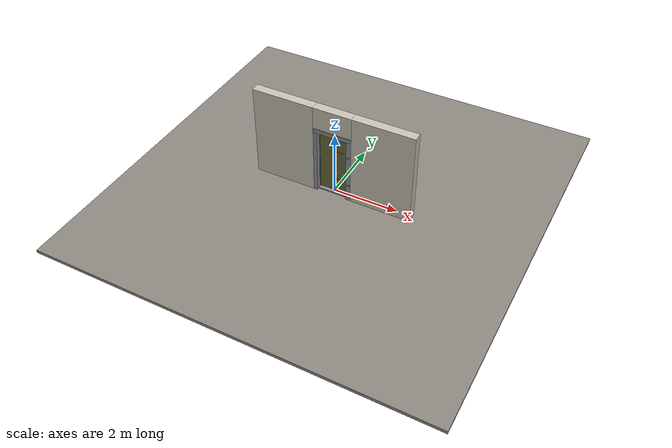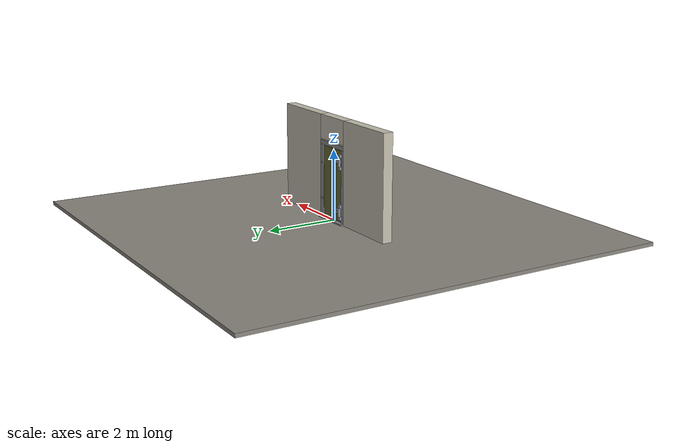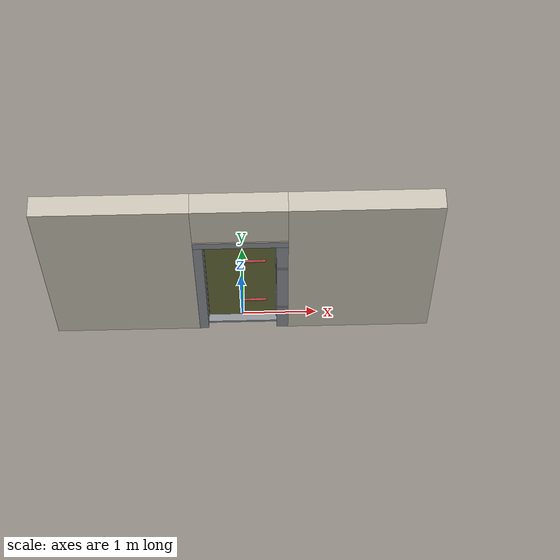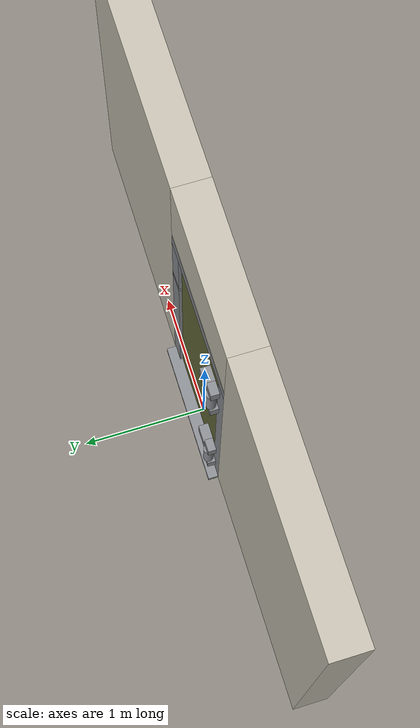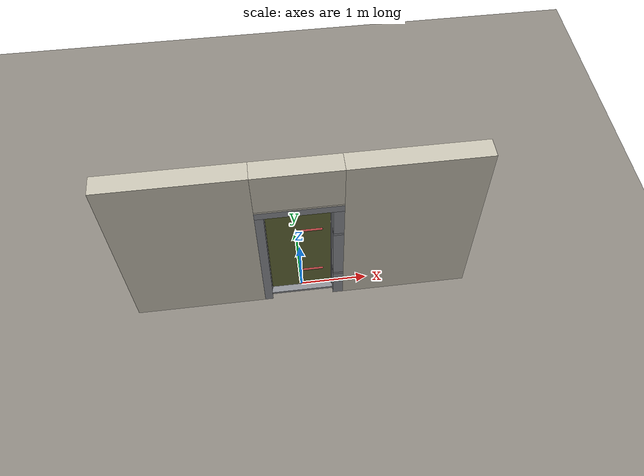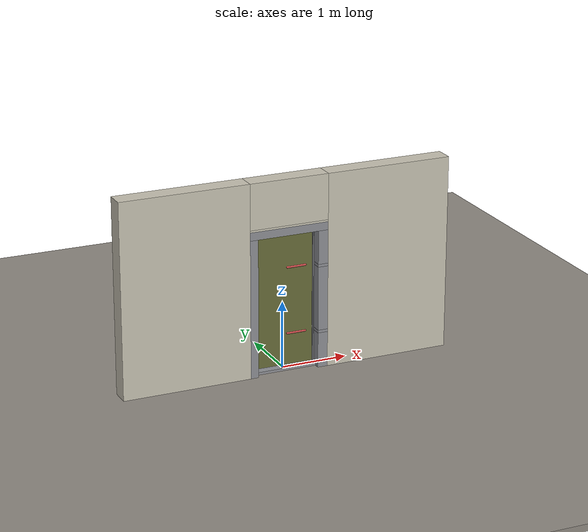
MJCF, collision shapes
<?xml version="1.0" ?>
<mujoco model="db0288_blast_simple">
  <compiler angle="radian" meshdir="../../hardware" texturedir="../../textures" autolimits="true" inertiafromgeom="false"/>
  <option timestep="0.002" integrator="implicitfast" cone="elliptic" impratio="10" noslip_iterations="3">
    <flag multiccd="enable"/>
  </option>
  <size memory="16M"/>
  <default>
    <geom condim="4" solref="0.005 1" solimp="0.95 0.99 0.001"/>
    <joint solreflimit="0.005 1" solimplimit="0.95 0.99 0.001"/>
    <tendon solreflimit="0.005 1"/>
    <equality solref="0.002 1"/>
  </default>
  <visual>
    <headlight ambient="0.4 0.4 0.4" diffuse="0.7 0.7 0.7" specular="0.2 0.2 0.2"/>
    <quality shadowsize="4096"/>
    <map znear="0.01" zfar="60"/>
  </visual>
  <asset>
    <mesh name="lever_c7a1f2892f" file="lever_c7a1f2892f.obj"/>
    <material name="mat_floor" rgba="0.55 0.53 0.5 1" specular="0.2" shininess="0.15" reflectance="0"/>
    <material name="mat_wall" rgba="0.78 0.76 0.7 1" specular="0.2" shininess="0.1" reflectance="0"/>
    <material name="mat_leaf" rgba="0.4 0.42 0.22 1" specular="0.23" shininess="0.55" reflectance="0.02"/>
    <material name="mat_op_steel_painted" rgba="0.45 0.48 0.52 1" specular="0.32" shininess="0.6" reflectance="0.08"/>
    <material name="mat_vault_bolt" rgba="0.75 0.76 0.77 1" specular="0.8" shininess="0.65" reflectance="0.4"/>
    <material name="mat_frame" rgba="0.55 0.56 0.58 1" specular="0.8" shininess="0.55" reflectance="0.4"/>
    <material name="mat_seal" rgba="0.1 0.1 0.1 1" specular="0.2" shininess="0.1" reflectance="0"/>
    <material name="mat_hinge" rgba="0.55 0.56 0.58 1" specular="0.8" shininess="0.55" reflectance="0.4"/>
    <texture name="skybox" type="skybox" builtin="gradient" rgb1="0.6 0.7 0.85" rgb2="0.9 0.92 0.95" width="256" height="256"/>
  </asset>
  <worldbody>
    <light name="sun" pos="1.5 -2.5 4" dir="-0.3 0.5 -0.8" directional="true" diffuse="0.8 0.8 0.8" specular="0.3 0.3 0.3" castshadow="true"/>
    <light name="fill" pos="-1.5 2.5 3" dir="0.3 -0.5 -0.7" directional="true" diffuse="0.35 0.35 0.4" castshadow="false"/>
    <camera name="robot_view" pos="0 -2.645625 1.753375" xyaxes="1 0 0 0 0.26963 0.962964" fovy="52"/>
    <camera name="far_view" pos="0 2.485625 1.753375" xyaxes="-1 0 0 0 -0.26963 0.962964" fovy="52"/>
    <camera name="iso" pos="1.949875 -2.235125 2.163875" xyaxes="0.741536 0.670913 0 -0.242917 0.268487 0.932151" fovy="46"/>
    <camera name="detail_handle" pos="0.2555 -0.9 0.83" xyaxes="0.97561 0.219512 0 -0.070934 0.315262 0.94635" fovy="38"/>
    <geom name="floor" type="box" size="6 6 0.05" pos="0 0 -0.05" material="mat_floor" group="0" contype="1" conaffinity="1" friction="0.8 0.005 0.0001" density="2400"/>
    <geom name="wall_left" type="box" size="0.95975 0.14 1.45" pos="-1.54025 -0.08 1.45" material="mat_wall" group="0" contype="1" conaffinity="1" friction="0.6 0.005 0.0001" density="800"/>
    <geom name="wall_right" type="box" size="0.94475 0.14 1.45" pos="1.55525 -0.08 1.45" material="mat_wall" group="0" contype="1" conaffinity="1" friction="0.6 0.005 0.0001" density="800"/>
    <geom name="wall_header" type="box" size="0.5955 0.14 0.34" pos="0.015 -0.08 2.56" material="mat_wall" group="0" contype="1" conaffinity="1" friction="0.6 0.005 0.0001" density="800"/>
    <geom name="jamb_hinge" type="box" size="0.06 0.14 1.035" pos="-0.5205 -0.08 1.035" material="mat_frame" group="0" contype="1" conaffinity="1" friction="0.6 0.005 0.0001" density="300"/>
    <geom name="strike_550_wall_n" type="box" size="0.075 0.101 0.021" pos="0.5355 -0.119 0.55" material="mat_frame" group="0" contype="1" conaffinity="1" friction="0.6 0.005 0.0001" density="300"/>
    <geom name="strike_550_wall_p" type="box" size="0.075 0.021 0.021" pos="0.5355 0.039 0.55" material="mat_frame" group="0" contype="1" conaffinity="1" friction="0.6 0.005 0.0001" density="300"/>
    <geom name="strike_550_back" type="box" size="0.0415 0.018 0.021" pos="0.569 0 0.55" material="mat_frame" group="0" contype="1" conaffinity="1" friction="0.6 0.005 0.0001" density="300"/>
    <geom name="strike_1550_wall_n" type="box" size="0.075 0.101 0.021" pos="0.5355 -0.119 1.55" material="mat_frame" group="0" contype="1" conaffinity="1" friction="0.6 0.005 0.0001" density="300"/>
    <geom name="strike_1550_wall_p" type="box" size="0.075 0.021 0.021" pos="0.5355 0.039 1.55" material="mat_frame" group="0" contype="1" conaffinity="1" friction="0.6 0.005 0.0001" density="300"/>
    <geom name="strike_1550_back" type="box" size="0.0415 0.018 0.021" pos="0.569 0 1.55" material="mat_frame" group="0" contype="1" conaffinity="1" friction="0.6 0.005 0.0001" density="300"/>
    <geom name="jamb_strike_0" type="box" size="0.075 0.14 0.2645" pos="0.5355 -0.08 0.2645" material="mat_frame" group="0" contype="1" conaffinity="1" friction="0.6 0.005 0.0001" density="300"/>
    <geom name="jamb_strike_1" type="box" size="0.075 0.14 0.479" pos="0.5355 -0.08 1.05" material="mat_frame" group="0" contype="1" conaffinity="1" friction="0.6 0.005 0.0001" density="300"/>
    <geom name="jamb_strike_2" type="box" size="0.075 0.14 0.2495" pos="0.5355 -0.08 1.8205" material="mat_frame" group="0" contype="1" conaffinity="1" friction="0.6 0.005 0.0001" density="300"/>
    <geom name="jamb_head" type="box" size="0.5955 0.14 0.06" pos="0.015 -0.08 2.13" material="mat_frame" group="0" contype="1" conaffinity="1" friction="0.6 0.005 0.0001" density="300"/>
    <geom name="head_stud" type="box" size="0.5955 0.14 0.015" pos="0.015 -0.08 2.205" material="mat_wall" group="0" contype="1" conaffinity="1" friction="0.6 0.005 0.0001" density="500"/>
    <geom name="stop_hinge" type="box" size="0.0055 0.016 1.035" pos="-0.455 -0.0565 1.035" material="mat_frame" group="0" contype="1" conaffinity="1" friction="0.6 0.005 0.0001" density="300"/>
    <geom name="stop_strike" type="box" size="0.0055 0.016 1.035" pos="0.455 -0.0565 1.035" material="mat_frame" group="0" contype="1" conaffinity="1" friction="0.6 0.005 0.0001" density="300"/>
    <geom name="stop_head" type="box" size="0.4605 0.016 0.0055" pos="0 -0.0565 2.0645" material="mat_frame" group="0" contype="1" conaffinity="1" friction="0.6 0.005 0.0001" density="300"/>
    <geom name="seal_hinge" type="box" size="0.004 0.006 1.035" pos="-0.4575 -0.046 1.035" material="mat_seal" group="1" contype="0" conaffinity="0" density="1100"/>
    <geom name="seal_strike" type="box" size="0.004 0.006 1.035" pos="0.4575 -0.046 1.035" material="mat_seal" group="1" contype="0" conaffinity="0" density="1100"/>
    <geom name="seal_head" type="box" size="0.4405 0.006 0.008" pos="0 -0.046 2.058" material="mat_seal" group="1" contype="0" conaffinity="0" density="1100"/>
    <geom name="sill_step" type="box" size="0.5805 0.14 0.02" pos="0 0 0.02" material="mat_frame" group="0" contype="1" conaffinity="1" friction="0.6 0.005 0.0001" density="7850"/>
    <geom name="hinge_0_bracket_b" type="box" size="0.05 0.0325 0.05" pos="-0.4545 0.0925 0.18" material="mat_hinge" group="1" contype="0" conaffinity="0" density="7850"/>
    <geom name="hinge_0_bracket_t" type="box" size="0.05 0.0325 0.05" pos="-0.4545 0.0925 0.52" material="mat_hinge" group="1" contype="0" conaffinity="0" density="7850"/>
    <geom name="hinge_1_bracket_b" type="box" size="0.05 0.0325 0.05" pos="-0.4545 0.0925 1.58" material="mat_hinge" group="1" contype="0" conaffinity="0" density="7850"/>
    <geom name="hinge_1_bracket_t" type="box" size="0.05 0.0325 0.05" pos="-0.4545 0.0925 1.92" material="mat_hinge" group="1" contype="0" conaffinity="0" density="7850"/>
    <site name="approach_point" pos="0 -1.5 0" quat="1 0 0 0" size="0.05" rgba="0.2 0.9 0.2 0.5" group="4"/>
    <site name="goal_point" pos="0 1.5 0" quat="1 0 0 0" size="0.05" rgba="0.2 0.9 0.2 0.5" group="4"/>
    <site name="door_plane_center" pos="0 0 1.035" quat="1 0 0 0" size="0.02" rgba="0.2 0.9 0.2 0.5" group="4"/>
    <body name="leaf" pos="-0.4605 0 0">
      <inertial pos="0.430326 0.006017 1.05" mass="676.398497" quat="0.507636 0.492246 -0.507636 0.492246" diaginertia="49.800262633 233.309734434 281.786664584"/>
      <joint name="leaf_hinge" type="hinge" axis="0 0 1" pos="0.006 0.105 0" limited="true" range="0 1.745329" solreflimit="0.02 1" damping="0.286983" frictionloss="67.398492" armature="0.5"/>
      <geom name="leaf_slab" type="box" size="0.45 0.04 1" pos="0.456 0 1.05" material="mat_leaf" group="0" contype="1" conaffinity="1" friction="0.45 0.005 0.0001" density="1"/>
      <geom name="hinge_0" type="cylinder" size="0.04 0.12" pos="0.006 0.105 0.35" material="mat_hinge" group="1" contype="0" conaffinity="0" density="7850"/>
      <geom name="hinge_0_arm" type="box" size="0.11 0.04 0.05" pos="0.116 0.08 0.35" material="mat_hinge" group="1" contype="0" conaffinity="0" density="7850"/>
      <geom name="hinge_1" type="cylinder" size="0.04 0.12" pos="0.006 0.105 1.75" material="mat_hinge" group="1" contype="0" conaffinity="0" density="7850"/>
      <geom name="hinge_1_arm" type="box" size="0.11 0.04 0.05" pos="0.116 0.08 1.75" material="mat_hinge" group="1" contype="0" conaffinity="0" density="7850"/>
      <body name="dog_0" pos="0.786 0 0.55">
        <inertial pos="-0.138181 -0.092433 0" mass="4.666646" quat="-0.044336 0 0 0.999017" diaginertia="0.001676913 0.056977311 0.05779918"/>
        <joint name="dog_0_hinge" type="hinge" axis="0 -1 0" limited="true" range="0 1.5708" damping="1" frictionloss="6" armature="0.005"/>
        <geom name="dog_0_lever" type="mesh" mesh="lever_c7a1f2892f" pos="0 -0.04 0" quat="0.707107 0.707107 0 0" material="mat_op_steel_painted" group="1" contype="0" conaffinity="0" density="7800"/>
        <geom name="dog_0_lever_col" type="capsule" size="0.015 0.14" pos="-0.15 -0.1 0" quat="0.707107 0 0.707107 0" material="mat_op_steel_painted" group="3" contype="1" conaffinity="1" rgba="0.8 0.3 0.3 0.25" friction="0.7 0.01 0.0001" density="7800"/>
        <site name="dog_0_grip" pos="-0.25 -0.1 0" quat="1 0 0 0" size="0.012" rgba="0.2 0.9 0.2 0.5" group="4"/>
      </body>
      <body name="bolt_0" pos="0.906 0 0.55">
        <inertial pos="-0.0195 0 0" mass="0.949106" quat="0 0 0.707107 0.707107" diaginertia="0.000118038 0.001859882 0.001859882"/>
        <joint name="bolt_0_slide" type="slide" axis="-1 0 0" limited="true" range="0 0.061" damping="20" frictionloss="25" armature="0.1"/>
        <geom name="bolt_0_geom" type="capsule" size="0.016 0.0645" pos="-0.0195 0 0" quat="0.707107 0 0.707107 0" material="mat_vault_bolt" group="0" contype="1" conaffinity="1" friction="0.3 0.005 0.0001" density="7850"/>
      </body>
      <body name="dog_1" pos="0.786 0 1.55">
        <inertial pos="-0.138181 -0.092433 0" mass="4.666646" quat="-0.044336 0 0 0.999017" diaginertia="0.001676913 0.056977311 0.05779918"/>
        <joint name="dog_1_hinge" type="hinge" axis="0 -1 0" limited="true" range="0 1.5708" damping="1" frictionloss="6" armature="0.005"/>
        <geom name="dog_1_lever" type="mesh" mesh="lever_c7a1f2892f" pos="0 -0.04 0" quat="0.707107 0.707107 0 0" material="mat_op_steel_painted" group="1" contype="0" conaffinity="0" density="7800"/>
        <geom name="dog_1_lever_col" type="capsule" size="0.015 0.14" pos="-0.15 -0.1 0" quat="0.707107 0 0.707107 0" material="mat_op_steel_painted" group="3" contype="1" conaffinity="1" rgba="0.8 0.3 0.3 0.25" friction="0.7 0.01 0.0001" density="7800"/>
        <site name="dog_1_grip" pos="-0.25 -0.1 0" quat="1 0 0 0" size="0.012" rgba="0.2 0.9 0.2 0.5" group="4"/>
      </body>
      <body name="bolt_1" pos="0.906 0 1.55">
        <inertial pos="-0.0195 0 0" mass="0.949106" quat="0 0 0.707107 0.707107" diaginertia="0.000118038 0.001859882 0.001859882"/>
        <joint name="bolt_1_slide" type="slide" axis="-1 0 0" limited="true" range="0 0.061" damping="20" frictionloss="25" armature="0.1"/>
        <geom name="bolt_1_geom" type="capsule" size="0.016 0.0645" pos="-0.0195 0 0" quat="0.707107 0 0.707107 0" material="mat_vault_bolt" group="0" contype="1" conaffinity="1" friction="0.3 0.005 0.0001" density="7850"/>
      </body>
    </body>
  </worldbody>
  <equality>
    <joint name="lever_bolt_0" joint1="bolt_0_slide" joint2="dog_0_hinge" polycoef="0 0.038834 0 0 0" active="true"/>
    <joint name="lever_bolt_1" joint1="bolt_1_slide" joint2="dog_1_hinge" polycoef="0 0.038834 0 0 0" active="true"/>
  </equality>
  <sensor>
    <jointpos name="leaf_hinge_pos" joint="leaf_hinge"/>
    <jointvel name="leaf_hinge_vel" joint="leaf_hinge"/>
    <jointpos name="dog_0_hinge_pos" joint="dog_0_hinge"/>
    <jointvel name="dog_0_hinge_vel" joint="dog_0_hinge"/>
    <jointpos name="bolt_0_slide_pos" joint="bolt_0_slide"/>
    <jointvel name="bolt_0_slide_vel" joint="bolt_0_slide"/>
    <jointpos name="dog_1_hinge_pos" joint="dog_1_hinge"/>
    <jointvel name="dog_1_hinge_vel" joint="dog_1_hinge"/>
    <jointpos name="bolt_1_slide_pos" joint="bolt_1_slide"/>
    <jointvel name="bolt_1_slide_vel" joint="bolt_1_slide"/>
  </sensor>
</mujoco>
